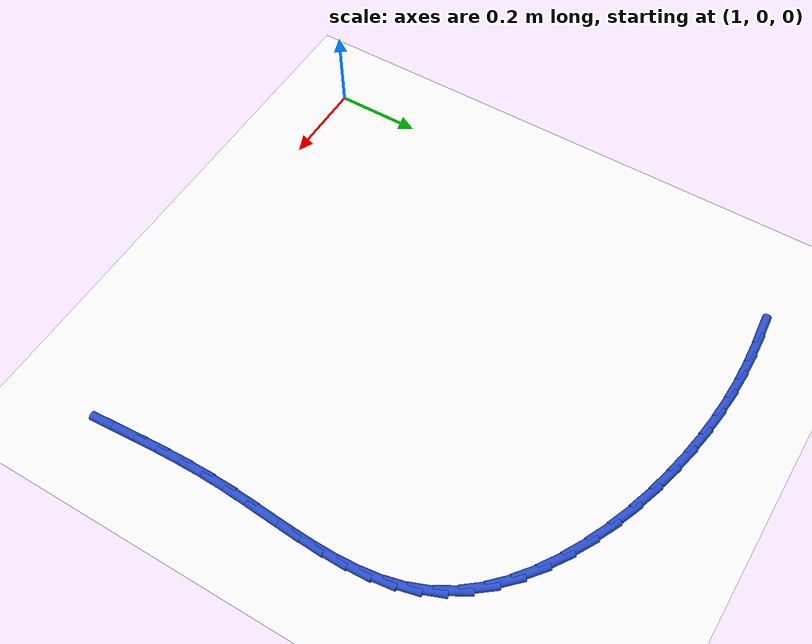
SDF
<sdf version="1.6">
 <world name="default">
  <model name="ground_plane">
   <static>1</static>
   <link name="link">
    <collision name="collision">
     <geometry><plane><normal>0 0 1</normal><size>100 100</size></plane></geometry>
     <surface><friction><ode><mu>100</mu><mu2>50</mu2></ode></friction></surface>
    </collision>
    <visual name="visual">
     <cast_shadows>0</cast_shadows>
     <geometry><plane><normal>0 0 1</normal><size>100 100</size></plane></geometry>
     <material>
      <script><uri>file://media/materials/scripts/gazebo.material</uri><name>Gazebo/WhiteGlow</name></script>
     </material>
    </visual>
   </link>
  </model>
  <model name="line">
   <link name="link_33">
    <pose>1.1177042972715494 1.163567645409254 0.01 0 1.57 0.09395556004129126</pose>
    <collision name="collision">
     <geometry><cylinder><radius>0.01</radius><length>0.08</length></cylinder></geometry>
    </collision>
    <visual name="visual">
     <material>
      <script><name>Gazebo/Blue</name><uri>file://media/materials/scripts/gazebo.material</uri></script>
     </material>
     <geometry><cylinder><radius>0.01</radius><length>0.08</length></cylinder></geometry>
    </visual>
   </link>
   <link name="link_34">
    <pose>1.1698719408278853 1.1684835594140386 0.01 0 1.57 0.050854526400168056</pose>
    <collision name="collision">
     <geometry><cylinder><radius>0.01</radius><length>0.08</length></cylinder></geometry>
    </collision>
    <visual name="visual">
     <material>
      <script><name>Gazebo/Blue</name><uri>file://media/materials/scripts/gazebo.material</uri></script>
     </material>
     <geometry><cylinder><radius>0.01</radius><length>0.08</length></cylinder></geometry>
    </visual>
   </link>
   <link name="link_35">
    <pose>1.2224392557208497 1.1711591522389169 0.01 0 1.57 0.0064618880255131505</pose>
    <collision name="collision">
     <geometry><cylinder><radius>0.01</radius><length>0.08</length></cylinder></geometry>
    </collision>
    <visual name="visual">
     <material>
      <script><name>Gazebo/Blue</name><uri>file://media/materials/scripts/gazebo.material</uri></script>
     </material>
     <geometry><cylinder><radius>0.01</radius><length>0.08</length></cylinder></geometry>
    </visual>
   </link>
   <link name="link_36">
    <pose>1.2754684332418638 1.1715018256157121 0.01 0 1.57 -0.03887337928186581</pose>
    <collision name="collision">
     <geometry><cylinder><radius>0.01</radius><length>0.08</length></cylinder></geometry>
    </collision>
    <visual name="visual">
     <material>
      <script><name>Gazebo/Blue</name><uri>file://media/materials/scripts/gazebo.material</uri></script>
     </material>
     <geometry><cylinder><radius>0.01</radius><length>0.08</length></cylinder></geometry>
    </visual>
   </link>
   <link name="link_37">
    <pose>1.3290216646823487 1.1694189812762477 0.01 0 1.57 -0.08477975819637278</pose>
    <collision name="collision">
     <geometry><cylinder><radius>0.01</radius><length>0.08</length></cylinder></geometry>
    </collision>
    <visual name="visual">
     <material>
      <script><name>Gazebo/Blue</name><uri>file://media/materials/scripts/gazebo.material</uri></script>
     </material>
     <geometry><cylinder><radius>0.01</radius><length>0.08</length></cylinder></geometry>
    </visual>
   </link>
   <link name="link_38">
    <pose>1.3831611413337268 1.1648180209523475 0.01 0 1.57 -0.130876531194201</pose>
    <collision name="collision">
     <geometry><cylinder><radius>0.01</radius><length>0.08</length></cylinder></geometry>
    </collision>
    <visual name="visual">
     <material>
      <script><name>Gazebo/Blue</name><uri>file://media/materials/scripts/gazebo.material</uri></script>
     </material>
     <geometry><cylinder><radius>0.01</radius><length>0.08</length></cylinder></geometry>
    </visual>
   </link>
   <link name="link_39">
    <pose>1.4379490544874194 1.1576063463758357 0.01 0 1.57 -0.17678843139016046</pose>
    <collision name="collision">
     <geometry><cylinder><radius>0.01</radius><length>0.08</length></cylinder></geometry>
    </collision>
    <visual name="visual">
     <material>
      <script><name>Gazebo/Blue</name><uri>file://media/materials/scripts/gazebo.material</uri></script>
     </material>
     <geometry><cylinder><radius>0.01</radius><length>0.08</length></cylinder></geometry>
    </visual>
   </link>
   <link name="link_40">
    <pose>1.4934473517089366 1.1476913789724472 0.01 0 1.57 -0.22260179335291427</pose>
    <collision name="collision">
     <geometry><cylinder><radius>0.01</radius><length>0.08</length></cylinder></geometry>
    </collision>
    <visual name="visual">
     <material>
      <script><name>Gazebo/Blue</name><uri>file://media/materials/scripts/gazebo.material</uri></script>
     </material>
     <geometry><cylinder><radius>0.01</radius><length>0.08</length></cylinder></geometry>
    </visual>
   </link>
   <link name="link_41">
    <pose>1.5495380958610534 1.13499507548565 0.01 0 1.57 -0.2699736251012646</pose>
    <collision name="collision">
     <geometry><cylinder><radius>0.01</radius><length>0.08</length></cylinder></geometry>
    </collision>
    <visual name="visual">
     <material>
      <script><name>Gazebo/Blue</name><uri>file://media/materials/scripts/gazebo.material</uri></script>
     </material>
     <geometry><cylinder><radius>0.01</radius><length>0.08</length></cylinder></geometry>
    </visual>
   </link>
   <link name="link_42">
    <pose>1.6056051763204113 1.1194796468317045 0.01 0 1.57 -0.3204192354930229</pose>
    <collision name="collision">
     <geometry><cylinder><radius>0.01</radius><length>0.08</length></cylinder></geometry>
    </collision>
    <visual name="visual">
     <material>
      <script><name>Gazebo/Blue</name><uri>file://media/materials/scripts/gazebo.material</uri></script>
     </material>
     <geometry><cylinder><radius>0.01</radius><length>0.08</length></cylinder></geometry>
    </visual>
   </link>
   <link name="link_43">
    <pose>1.660946955443156 1.101114214811447 0.01 0 1.57 -0.37538536378116055</pose>
    <collision name="collision">
     <geometry><cylinder><radius>0.01</radius><length>0.08</length></cylinder></geometry>
    </collision>
    <visual name="visual">
     <material>
      <script><name>Gazebo/Blue</name><uri>file://media/materials/scripts/gazebo.material</uri></script>
     </material>
     <geometry><cylinder><radius>0.01</radius><length>0.08</length></cylinder></geometry>
    </visual>
   </link>
   <link name="link_44">
    <pose>1.7148617955854322 1.0798679012257137 0.01 0 1.57 -0.4364868233046424</pose>
    <collision name="collision">
     <geometry><cylinder><radius>0.01</radius><length>0.08</length></cylinder></geometry>
    </collision>
    <visual name="visual">
     <material>
      <script><name>Gazebo/Blue</name><uri>file://media/materials/scripts/gazebo.material</uri></script>
     </material>
     <geometry><cylinder><radius>0.01</radius><length>0.08</length></cylinder></geometry>
    </visual>
   </link>
   <link name="link_45">
    <pose>1.7666480591033848 1.0557098278753403 0.01 0 1.57 -0.505581698947166</pose>
    <collision name="collision">
     <geometry><cylinder><radius>0.01</radius><length>0.08</length></cylinder></geometry>
    </collision>
    <visual name="visual">
     <material>
      <script><name>Gazebo/Blue</name><uri>file://media/materials/scripts/gazebo.material</uri></script>
     </material>
     <geometry><cylinder><radius>0.01</radius><length>0.08</length></cylinder></geometry>
    </visual>
   </link>
   <link name="link_46">
    <pose>1.8156041083531604 1.028609116561163 0.01 0 1.57 -0.5848170481440942</pose>
    <collision name="collision">
     <geometry><cylinder><radius>0.01</radius><length>0.08</length></cylinder></geometry>
    </collision>
    <visual name="visual">
     <material>
      <script><name>Gazebo/Blue</name><uri>file://media/materials/scripts/gazebo.material</uri></script>
     </material>
     <geometry><cylinder><radius>0.01</radius><length>0.08</length></cylinder></geometry>
    </visual>
   </link>
   <link name="link_47">
    <pose>1.8610283056909038 0.9985348890840179 0.01 0 1.57 -0.6766041905669758</pose>
    <collision name="collision">
     <geometry><cylinder><radius>0.01</radius><length>0.08</length></cylinder></geometry>
    </collision>
    <visual name="visual">
     <material>
      <script><name>Gazebo/Blue</name><uri>file://media/materials/scripts/gazebo.material</uri></script>
     </material>
     <geometry><cylinder><radius>0.01</radius><length>0.08</length></cylinder></geometry>
    </visual>
   </link>
   <link name="link_48">
    <pose>1.9022190134727608 0.965456267244742 0.01 0 1.57 -0.7834403489936833</pose>
    <collision name="collision">
     <geometry><cylinder><radius>0.01</radius><length>0.08</length></cylinder></geometry>
    </collision>
    <visual name="visual">
     <material>
      <script><name>Gazebo/Blue</name><uri>file://media/materials/scripts/gazebo.material</uri></script>
     </material>
     <geometry><cylinder><radius>0.01</radius><length>0.08</length></cylinder></geometry>
    </visual>
   </link>
   <link name="link_49">
    <pose>1.938474594054876 0.9293423728441703 0.01 0 1.57 -0.9074442800778407</pose>
    <collision name="collision">
     <geometry><cylinder><radius>0.01</radius><length>0.08</length></cylinder></geometry>
    </collision>
    <visual name="visual">
     <material>
      <script><name>Gazebo/Blue</name><uri>file://media/materials/scripts/gazebo.material</uri></script>
     </material>
     <geometry><cylinder><radius>0.01</radius><length>0.08</length></cylinder></geometry>
    </visual>
   </link>
   <link name="link_50">
    <pose>1.9690934097933954 0.890162327683139 0.01 0 1.57 -1.0494760091686781</pose>
    <collision name="collision">
     <geometry><cylinder><radius>0.01</radius><length>0.08</length></cylinder></geometry>
    </collision>
    <visual name="visual">
     <material>
      <script><name>Gazebo/Blue</name><uri>file://media/materials/scripts/gazebo.material</uri></script>
     </material>
     <geometry><cylinder><radius>0.01</radius><length>0.08</length></cylinder></geometry>
    </visual>
   </link>
   <link name="link_51">
    <pose>1.9933738230444644 0.8478852535624847 0.01 0 1.57 -1.2019973958409216</pose>
    <collision name="collision">
     <geometry><cylinder><radius>0.01</radius><length>0.08</length></cylinder></geometry>
    </collision>
    <visual name="visual">
     <material>
      <script><name>Gazebo/Blue</name><uri>file://media/materials/scripts/gazebo.material</uri></script>
     </material>
     <geometry><cylinder><radius>0.01</radius><length>0.08</length></cylinder></geometry>
    </visual>
   </link>
   <link name="link_52">
    <pose>2.010895980969333 0.802547681054171 0.01 0 1.57 -1.3364964026828576</pose>
    <collision name="collision">
     <geometry><cylinder><radius>0.01</radius><length>0.08</length></cylinder></geometry>
    </collision>
    <visual name="visual">
     <material>
      <script><name>Gazebo/Blue</name><uri>file://media/materials/scripts/gazebo.material</uri></script>
     </material>
     <geometry><cylinder><radius>0.01</radius><length>0.08</length></cylinder></geometry>
    </visual>
   </link>
   <link name="link_53">
    <pose>2.022374322638428 0.7544574868862065 0.01 0 1.57 -1.4439837482296993</pose>
    <collision name="collision">
     <geometry><cylinder><radius>0.01</radius><length>0.08</length></cylinder></geometry>
    </collision>
    <visual name="visual">
     <material>
      <script><name>Gazebo/Blue</name><uri>file://media/materials/scripts/gazebo.material</uri></script>
     </material>
     <geometry><cylinder><radius>0.01</radius><length>0.08</length></cylinder></geometry>
    </visual>
   </link>
   <link name="link_54">
    <pose>2.0288086596045423 0.7039908148045564 0.01 0 1.57 -1.5252726225901236</pose>
    <collision name="collision">
     <geometry><cylinder><radius>0.01</radius><length>0.08</length></cylinder></geometry>
    </collision>
    <visual name="visual">
     <material>
      <script><name>Gazebo/Blue</name><uri>file://media/materials/scripts/gazebo.material</uri></script>
     </material>
     <geometry><cylinder><radius>0.01</radius><length>0.08</length></cylinder></geometry>
    </visual>
   </link>
   <link name="link_55">
    <pose>2.0311988034231243 0.6515238085558209 0.01 0 1.57 1.558701828733899</pose>
    <collision name="collision">
     <geometry><cylinder><radius>0.01</radius><length>0.08</length></cylinder></geometry>
    </collision>
    <visual name="visual">
     <material>
      <script><name>Gazebo/Blue</name><uri>file://media/materials/scripts/gazebo.material</uri></script>
     </material>
     <geometry><cylinder><radius>0.01</radius><length>0.08</length></cylinder></geometry>
    </visual>
   </link>
   <link name="link_56">
    <pose>2.030544565649626 0.5974326118866022 0.01 0 1.57 1.5220665083704878</pose>
    <collision name="collision">
     <geometry><cylinder><radius>0.01</radius><length>0.08</length></cylinder></geometry>
    </collision>
    <visual name="visual">
     <material>
      <script><name>Gazebo/Blue</name><uri>file://media/materials/scripts/gazebo.material</uri></script>
     </material>
     <geometry><cylinder><radius>0.01</radius><length>0.08</length></cylinder></geometry>
    </visual>
   </link>
   <link name="link_57">
    <pose>2.027845757839496 0.5420933685435001 0.01 0 1.57 1.504296236189651</pose>
    <collision name="collision">
     <geometry><cylinder><radius>0.01</radius><length>0.08</length></cylinder></geometry>
    </collision>
    <visual name="visual">
     <material>
      <script><name>Gazebo/Blue</name><uri>file://media/materials/scripts/gazebo.material</uri></script>
     </material>
     <geometry><cylinder><radius>0.01</radius><length>0.08</length></cylinder></geometry>
    </visual>
   </link>
   <link name="link_58">
    <pose>2.0241021915481867 0.48588222227311567 0.01 0 1.57 1.504086784365829</pose>
    <collision name="collision">
     <geometry><cylinder><radius>0.01</radius><length>0.08</length></cylinder></geometry>
    </collision>
    <visual name="visual">
     <material>
      <script><name>Gazebo/Blue</name><uri>file://media/materials/scripts/gazebo.material</uri></script>
     </material>
     <geometry><cylinder><radius>0.01</radius><length>0.08</length></cylinder></geometry>
    </visual>
   </link>
   <link name="link_59">
    <pose>2.0203136783311466 0.42917531682204973 0.01 0 1.57 1.5209726984772949</pose>
    <collision name="collision">
     <geometry><cylinder><radius>0.01</radius><length>0.08</length></cylinder></geometry>
    </collision>
    <visual name="visual">
     <material>
      <script><name>Gazebo/Blue</name><uri>file://media/materials/scripts/gazebo.material</uri></script>
     </material>
     <geometry><cylinder><radius>0.01</radius><length>0.08</length></cylinder></geometry>
    </visual>
   </link>
   <link name="link_60">
    <pose>2.0174800297438265 0.3723487959369035 0.01 0 1.57 1.5533097999623708</pose>
    <collision name="collision">
     <geometry><cylinder><radius>0.01</radius><length>0.08</length></cylinder></geometry>
    </collision>
    <visual name="visual">
     <material>
      <script><name>Gazebo/Blue</name><uri>file://media/materials/scripts/gazebo.material</uri></script>
     </material>
     <geometry><cylinder><radius>0.01</radius><length>0.08</length></cylinder></geometry>
    </visual>
   </link>
   <link name="link_61">
    <pose>2.0164902777022187 0.3157537289257077 0.01 0 1.57 -1.555869361105862</pose>
    <collision name="collision">
     <geometry><cylinder><radius>0.01</radius><length>0.08</length></cylinder></geometry>
    </collision>
    <visual name="visual">
     <material>
      <script><name>Gazebo/Blue</name><uri>file://media/materials/scripts/gazebo.material</uri></script>
     </material>
     <geometry><cylinder><radius>0.01</radius><length>0.08</length></cylinder></geometry>
    </visual>
   </link>
   <link name="link_62">
    <pose>2.017329491523077 0.25953657750997894 0.01 0 1.57 -1.5311674508640003</pose>
    <collision name="collision">
     <geometry><cylinder><radius>0.01</radius><length>0.08</length></cylinder></geometry>
    </collision>
    <visual name="visual">
     <material>
      <script><name>Gazebo/Blue</name><uri>file://media/materials/scripts/gazebo.material</uri></script>
     </material>
     <geometry><cylinder><radius>0.01</radius><length>0.08</length></cylinder></geometry>
    </visual>
   </link>
   <link name="link_63">
    <pose>2.019541648217063 0.2037439642892901 0.01 0 1.57 -1.5143491514365828</pose>
    <collision name="collision">
     <geometry><cylinder><radius>0.01</radius><length>0.08</length></cylinder></geometry>
    </collision>
    <visual name="visual">
     <material>
      <script><name>Gazebo/Blue</name><uri>file://media/materials/scripts/gazebo.material</uri></script>
     </material>
     <geometry><cylinder><radius>0.01</radius><length>0.08</length></cylinder></geometry>
    </visual>
   </link>
   <link name="link_64">
    <pose>2.022667746908169 0.14842183783288898 0.01 0 1.57 -1.5055484217790607</pose>
    <collision name="collision">
     <geometry><cylinder><radius>0.01</radius><length>0.08</length></cylinder></geometry>
    </collision>
    <visual name="visual">
     <material>
      <script><name>Gazebo/Blue</name><uri>file://media/materials/scripts/gazebo.material</uri></script>
     </material>
     <geometry><cylinder><radius>0.01</radius><length>0.08</length></cylinder></geometry>
    </visual>
   </link>
   <link name="link_65">
    <pose>2.0262487867203873 0.09361614671002294 0.01 0 1.57 -1.5049484115607221</pose>
    <collision name="collision">
     <geometry><cylinder><radius>0.01</radius><length>0.08</length></cylinder></geometry>
    </collision>
    <visual name="visual">
     <material>
      <script><name>Gazebo/Blue</name><uri>file://media/materials/scripts/gazebo.material</uri></script>
     </material>
     <geometry><cylinder><radius>0.01</radius><length>0.08</length></cylinder></geometry>
    </visual>
   </link>
  </model>
 </world>
</sdf>
